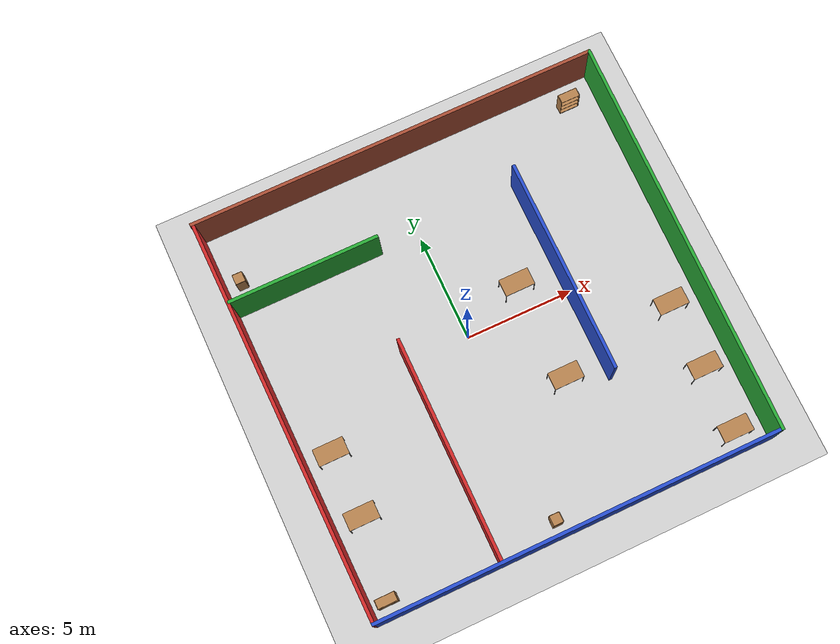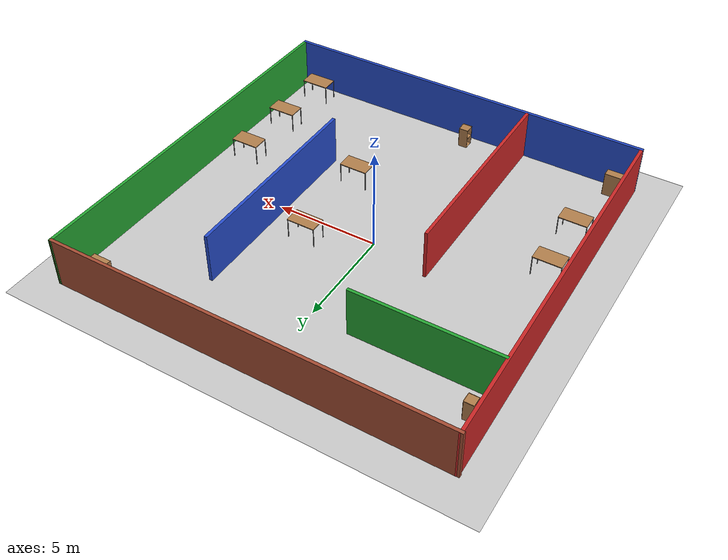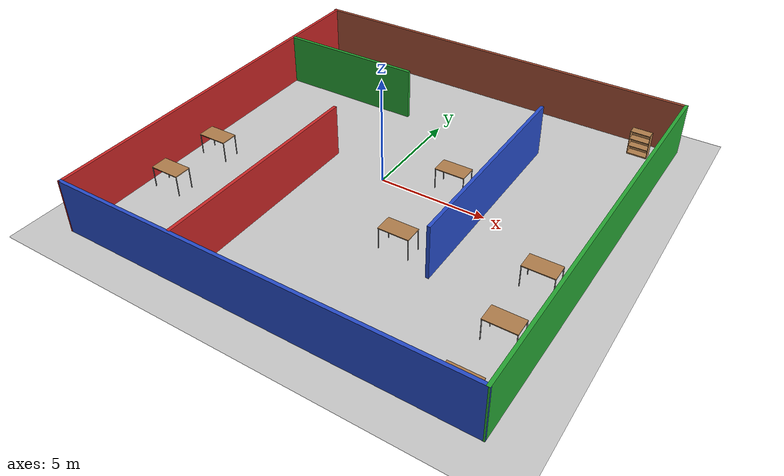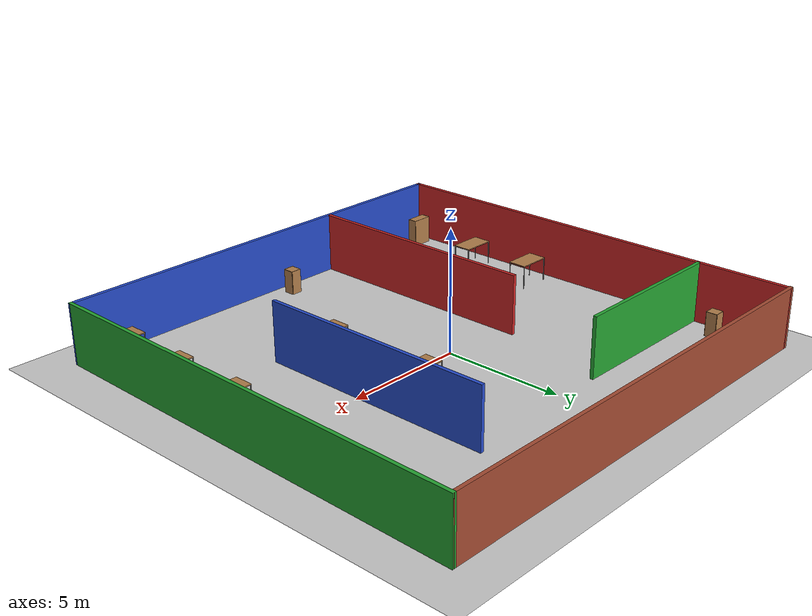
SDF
<sdf version="1.6">
 <world name="default">
  <light name="sun" type="directional">
   <pose>0 0 10 0 -0 0</pose>
   <diffuse>0.8 0.8 0.8 1</diffuse>
   <specular>0.1 0.1 0.1 1</specular>
   <attenuation>
    <range>1000</range>
    <constant>0.9</constant>
    <linear>0.01</linear>
    <quadratic>0.001</quadratic>
   </attenuation>
   <direction>-0.5 0.5 -1</direction>
  </light>
  <model name="ground_plane">
   <static>1</static>
   <link name="link">
    <collision name="collision">
     <geometry><plane><normal>0 0 1</normal><size>100 100</size></plane></geometry>
     <surface><friction><ode><mu>100</mu><mu2>50</mu2></ode></friction></surface>
    </collision>
    <visual name="visual">
     <cast_shadows>0</cast_shadows>
     <geometry><plane><normal>0 0 1</normal><size>100 100</size></plane></geometry>
     <material>
      <script><uri>file://media/materials/scripts/gazebo.material</uri><name>Gazebo/Grey</name></script>
     </material>
    </visual>
   </link>
  </model>
  <gravity>0 0 -9.8</gravity>
  <magnetic_field>6e-06 2.3e-05 -4.2e-05</magnetic_field>
  <atmosphere type="adiabatic"/>
  <physics name="default_physics" default="0" type="ode">
   <max_step_size>0.001</max_step_size>
   <real_time_factor>1</real_time_factor>
   <real_time_update_rate>1000</real_time_update_rate>
  </physics>
  <scene><ambient>0.4 0.4 0.4 1</ambient><background>0.7 0.7 0.7 1</background><shadows>1</shadows></scene>
  <spherical_coordinates>
   <surface_model>EARTH_WGS84</surface_model>
   <latitude_deg>0</latitude_deg>
   <longitude_deg>0</longitude_deg>
   <elevation>0</elevation>
   <heading_deg>0</heading_deg>
  </spherical_coordinates>
  <model name="simple_world2">
   <pose>0.654916 -0.263039 0 0 -0 0</pose>
   <link name="Wall_11">
    <collision name="Wall_11_Collision">
     <geometry><box><size>10.25 0.15 2.5</size></box></geometry>
     <pose>0 0 1.25 0 -0 0</pose>
    </collision>
    <visual name="Wall_11_Visual">
     <pose>0 0 1.25 0 -0 0</pose>
     <geometry><box><size>10.25 0.15 2.5</size></box></geometry>
     <material>
      <script><uri>file://media/materials/scripts/gazebo.material</uri><name>Gazebo/Red</name></script>
      <ambient>1 0.764706 0.305882 1</ambient>
     </material>
    </visual>
    <pose>-3.59077 -4.17597 0 0 -0 1.5708</pose>
   </link>
   <link name="Wall_2">
    <collision name="Wall_2_Collision">
     <geometry><box><size>18.75 0.15 2.5</size></box></geometry>
     <pose>0 0 1.25 0 -0 0</pose>
    </collision>
    <visual name="Wall_2_Visual">
     <pose>0 0 1.25 0 -0 0</pose>
     <geometry><box><size>18.75 0.15 2.5</size></box></geometry>
     <material>
      <script><uri>file://media/materials/scripts/gazebo.material</uri><name>Gazebo/Blue</name></script>
      <ambient>0.435294 0.796078 0.67451 1</ambient>
     </material>
    </visual>
    <pose>-0.013525 -9.34409 0 0 -0 0</pose>
   </link>
   <link name="Wall_3">
    <collision name="Wall_3_Collision">
     <geometry><box><size>18.8403 0.15 2.5</size></box></geometry>
     <pose>0 0 1.25 0 -0 0</pose>
    </collision>
    <visual name="Wall_3_Visual">
     <pose>0 0 1.25 0 -0 0</pose>
     <geometry><box><size>18.8403 0.15 2.5</size></box></geometry>
     <material>
      <script><uri>file://media/materials/scripts/gazebo.material</uri><name>Gazebo/Green</name></script>
      <ambient>0.760784 0.662745 0.627451 1</ambient>
     </material>
    </visual>
    <pose>9.42807 0 0 0 -0 1.55564</pose>
   </link>
   <link name="Wall_4">
    <collision name="Wall_4_Collision">
     <geometry><box><size>19.25 0.15 2.5</size></box></geometry>
     <pose>0 0 1.25 0 -0 0</pose>
    </collision>
    <visual name="Wall_4_Visual">
     <pose>0 0 1.25 0 -0 0</pose>
     <geometry><box><size>19.25 0.15 2.5</size></box></geometry>
     <material>
      <script><uri>file://media/materials/scripts/gazebo.material</uri><name>Gazebo/Bricks</name></script>
      <ambient>1 1 1 1</ambient>
     </material>
    </visual>
    <pose>-0.020792 9.34409 0 0 -0 3.14159</pose>
   </link>
   <link name="Wall_5">
    <collision name="Wall_5_Collision">
     <geometry><box><size>18.8394 0.15 2.5</size></box></geometry>
     <pose>0 0 1.25 0 -0 0</pose>
    </collision>
    <visual name="Wall_5_Visual">
     <pose>0 0 1.25 0 -0 0</pose>
     <geometry><box><size>18.8394 0.15 2.5</size></box></geometry>
     <material>
      <script><uri>file://media/materials/scripts/gazebo.material</uri><name>Gazebo/Red</name></script>
      <ambient>0.996078 0.47451 0.0196078 1</ambient>
     </material>
    </visual>
    <pose>-9.42193 0 0 0 0 -1.5592</pose>
   </link>
   <link name="Wall_7">
    <collision name="Wall_7_Collision">
     <geometry><box><size>10 0.15 2.5</size></box></geometry>
     <pose>0 0 1.25 0 -0 0</pose>
    </collision>
    <visual name="Wall_7_Visual">
     <pose>0 0 1.25 0 -0 0</pose>
     <geometry><box><size>10 0.15 2.5</size></box></geometry>
     <material>
      <script><uri>file://media/materials/scripts/gazebo.material</uri><name>Gazebo/Blue</name></script>
      <ambient>1 0.764706 0.305882 1</ambient>
     </material>
    </visual>
    <pose>4.1767 0.898502 0 0 0 -1.5708</pose>
   </link>
   <link name="Wall_9">
    <collision name="Wall_9_Collision">
     <geometry><box><size>7 0.15 2.5</size></box></geometry>
     <pose>0 0 1.25 0 -0 0</pose>
    </collision>
    <visual name="Wall_9_Visual">
     <pose>0 0 1.25 0 -0 0</pose>
     <geometry><box><size>7 0.15 2.5</size></box></geometry>
     <material>
      <script><uri>file://media/materials/scripts/gazebo.material</uri><name>Gazebo/Green</name></script>
      <ambient>0.435294 0.796078 0.67451 1</ambient>
     </material>
    </visual>
    <pose>-5.99137 5.4594 0 0 -0 0</pose>
   </link>
   <static>1</static>
  </model>
  <model name="bookshelf">
   <static>1</static>
   <link name="link">
    <inertial><mass>1</mass></inertial>
    <collision name="back">
     <pose>0 0.005 0.6 0 -0 0</pose>
     <geometry><box><size>0.9 0.01 1.2</size></box></geometry>
    </collision>
    <visual name="visual1">
     <pose>0 0.005 0.6 0 -0 0</pose>
     <geometry><box><size>0.9 0.01 1.2</size></box></geometry>
     <material>
      <script><uri>file://media/materials/scripts/gazebo.material</uri><name>Gazebo/Wood</name></script>
     </material>
    </visual>
    <collision name="left_side">
     <pose>0.45 -0.195 0.6 0 -0 0</pose>
     <geometry><box><size>0.02 0.4 1.2</size></box></geometry>
    </collision>
    <visual name="visual2">
     <pose>0.45 -0.195 0.6 0 -0 0</pose>
     <geometry><box><size>0.02 0.4 1.2</size></box></geometry>
     <material>
      <script><uri>file://media/materials/scripts/gazebo.material</uri><name>Gazebo/Wood</name></script>
     </material>
    </visual>
    <collision name="right_side">
     <pose>-0.45 -0.195 0.6 0 -0 0</pose>
     <geometry><box><size>0.02 0.4 1.2</size></box></geometry>
    </collision>
    <visual name="visual3">
     <pose>-0.45 -0.195 0.6 0 -0 0</pose>
     <geometry><box><size>0.02 0.4 1.2</size></box></geometry>
     <material>
      <script><uri>file://media/materials/scripts/gazebo.material</uri><name>Gazebo/Wood</name></script>
     </material>
    </visual>
    <collision name="bottom">
     <pose>0 -0.195 0.03 0 -0 0</pose>
     <geometry><box><size>0.88 0.4 0.06</size></box></geometry>
    </collision>
    <visual name="visual4">
     <pose>0 -0.195 0.03 0 -0 0</pose>
     <geometry><box><size>0.88 0.4 0.06</size></box></geometry>
     <material>
      <script><uri>file://media/materials/scripts/gazebo.material</uri><name>Gazebo/Wood</name></script>
     </material>
    </visual>
    <collision name="top">
     <pose>0 -0.195 1.19 0 -0 0</pose>
     <geometry><box><size>0.88 0.4 0.02</size></box></geometry>
    </collision>
    <visual name="visual5">
     <pose>0 -0.195 1.19 0 -0 0</pose>
     <geometry><box><size>0.88 0.4 0.02</size></box></geometry>
     <material>
      <script><uri>file://media/materials/scripts/gazebo.material</uri><name>Gazebo/Wood</name></script>
     </material>
    </visual>
    <collision name="low_shelf">
     <pose>0 -0.195 0.43 0 -0 0</pose>
     <geometry><box><size>0.88 0.4 0.02</size></box></geometry>
    </collision>
    <visual name="visual6">
     <pose>0 -0.195 0.43 0 -0 0</pose>
     <geometry><box><size>0.88 0.4 0.02</size></box></geometry>
     <material>
      <script><uri>file://media/materials/scripts/gazebo.material</uri><name>Gazebo/Wood</name></script>
     </material>
    </visual>
    <collision name="high_shelf">
     <pose>0 -0.195 0.8 0 -0 0</pose>
     <geometry><box><size>0.88 0.4 0.02</size></box></geometry>
    </collision>
    <visual name="visual7">
     <pose>0 -0.195 0.8 0 -0 0</pose>
     <geometry><box><size>0.88 0.4 0.02</size></box></geometry>
     <material>
      <script><uri>file://media/materials/scripts/gazebo.material</uri><name>Gazebo/Wood</name></script>
     </material>
    </visual>
   </link>
   <pose>-7.88139 -8.68727 0 0 -0 0</pose>
  </model>
  <model name="bookshelf_0">
   <static>1</static>
   <link name="link">
    <inertial><mass>1</mass></inertial>
    <collision name="back">
     <pose>0 0.005 0.6 0 -0 0</pose>
     <geometry><box><size>0.9 0.01 1.2</size></box></geometry>
    </collision>
    <visual name="visual1">
     <pose>0 0.005 0.6 0 -0 0</pose>
     <geometry><box><size>0.9 0.01 1.2</size></box></geometry>
     <material>
      <script><uri>file://media/materials/scripts/gazebo.material</uri><name>Gazebo/Wood</name></script>
     </material>
    </visual>
    <collision name="left_side">
     <pose>0.45 -0.195 0.6 0 -0 0</pose>
     <geometry><box><size>0.02 0.4 1.2</size></box></geometry>
    </collision>
    <visual name="visual2">
     <pose>0.45 -0.195 0.6 0 -0 0</pose>
     <geometry><box><size>0.02 0.4 1.2</size></box></geometry>
     <material>
      <script><uri>file://media/materials/scripts/gazebo.material</uri><name>Gazebo/Wood</name></script>
     </material>
    </visual>
    <collision name="right_side">
     <pose>-0.45 -0.195 0.6 0 -0 0</pose>
     <geometry><box><size>0.02 0.4 1.2</size></box></geometry>
    </collision>
    <visual name="visual3">
     <pose>-0.45 -0.195 0.6 0 -0 0</pose>
     <geometry><box><size>0.02 0.4 1.2</size></box></geometry>
     <material>
      <script><uri>file://media/materials/scripts/gazebo.material</uri><name>Gazebo/Wood</name></script>
     </material>
    </visual>
    <collision name="bottom">
     <pose>0 -0.195 0.03 0 -0 0</pose>
     <geometry><box><size>0.88 0.4 0.06</size></box></geometry>
    </collision>
    <visual name="visual4">
     <pose>0 -0.195 0.03 0 -0 0</pose>
     <geometry><box><size>0.88 0.4 0.06</size></box></geometry>
     <material>
      <script><uri>file://media/materials/scripts/gazebo.material</uri><name>Gazebo/Wood</name></script>
     </material>
    </visual>
    <collision name="top">
     <pose>0 -0.195 1.19 0 -0 0</pose>
     <geometry><box><size>0.88 0.4 0.02</size></box></geometry>
    </collision>
    <visual name="visual5">
     <pose>0 -0.195 1.19 0 -0 0</pose>
     <geometry><box><size>0.88 0.4 0.02</size></box></geometry>
     <material>
      <script><uri>file://media/materials/scripts/gazebo.material</uri><name>Gazebo/Wood</name></script>
     </material>
    </visual>
    <collision name="low_shelf">
     <pose>0 -0.195 0.43 0 -0 0</pose>
     <geometry><box><size>0.88 0.4 0.02</size></box></geometry>
    </collision>
    <visual name="visual6">
     <pose>0 -0.195 0.43 0 -0 0</pose>
     <geometry><box><size>0.88 0.4 0.02</size></box></geometry>
     <material>
      <script><uri>file://media/materials/scripts/gazebo.material</uri><name>Gazebo/Wood</name></script>
     </material>
    </visual>
    <collision name="high_shelf">
     <pose>0 -0.195 0.8 0 -0 0</pose>
     <geometry><box><size>0.88 0.4 0.02</size></box></geometry>
    </collision>
    <visual name="visual7">
     <pose>0 -0.195 0.8 0 -0 0</pose>
     <geometry><box><size>0.88 0.4 0.02</size></box></geometry>
     <material>
      <script><uri>file://media/materials/scripts/gazebo.material</uri><name>Gazebo/Wood</name></script>
     </material>
    </visual>
   </link>
   <pose>8.78874 8.22526 0 0 -0 0</pose>
  </model>
  <model name="cabinet">
   <static>1</static>
   <link name="cabinet_bottom_plate">
    <inertial>
     <pose>0 0 -1 0 -0 0</pose>
     <inertia><ixx>2.05</ixx><ixy>0</ixy><ixz>0</ixz><iyy>2.05</iyy><iyz>0</iyz><izz>2.05</izz></inertia>
     <mass>25</mass>
    </inertial>
    <collision name="cabinet_bottom_plate_geom">
     <pose>0 0 0.01 0 -0 0</pose>
     <geometry><box><size>0.45 0.45 0.02</size></box></geometry>
    </collision>
    <visual name="cabinet_bottom_plate_geom_visual">
     <pose>0 0 0.01 0 -0 0</pose>
     <geometry><box><size>0.45 0.45 0.02</size></box></geometry>
     <material>
      <script><uri>file://media/materials/scripts/gazebo.material</uri><name>Gazebo/Wood</name></script>
     </material>
    </visual>
    <collision name="cabinet_bottom_plate_geom_cabinet_back_plate">
     <pose>0.235 0 0.51 0 -0 0</pose>
     <geometry><box><size>0.02 0.45 1.02</size></box></geometry>
    </collision>
    <visual name="cabinet_bottom_plate_geom_cabinet_back_plate_visual">
     <pose>0.235 0 0.51 0 -0 0</pose>
     <geometry><box><size>0.02 0.45 1.02</size></box></geometry>
     <material>
      <script><uri>file://media/materials/scripts/gazebo.material</uri><name>Gazebo/Wood</name></script>
     </material>
    </visual>
    <collision name="cabinet_bottom_plate_geom_cabinet_left_plate">
     <pose>0 0.235 0.51 0 -0 0</pose>
     <geometry><box><size>0.45 0.02 1.02</size></box></geometry>
    </collision>
    <visual name="cabinet_bottom_plate_geom_cabinet_left_plate_visual">
     <pose>0 0.235 0.51 0 -0 0</pose>
     <geometry><box><size>0.45 0.02 1.02</size></box></geometry>
     <material>
      <script><uri>file://media/materials/scripts/gazebo.material</uri><name>Gazebo/Wood</name></script>
     </material>
    </visual>
    <collision name="cabinet_bottom_plate_geom_cabinet_middle_plate">
     <pose>0 0 0.51 0 -0 0</pose>
     <geometry><box><size>0.45 0.45 0.02</size></box></geometry>
    </collision>
    <visual name="cabinet_bottom_plate_geom_cabinet_middle_plate_visual">
     <pose>0 0 0.51 0 -0 0</pose>
     <geometry><box><size>0.45 0.45 0.02</size></box></geometry>
     <material>
      <script><uri>file://media/materials/scripts/gazebo.material</uri><name>Gazebo/Wood</name></script>
     </material>
    </visual>
    <collision name="cabinet_bottom_plate_geom_cabinet_right_plate">
     <pose>0 -0.235 0.51 0 -0 0</pose>
     <geometry><box><size>0.45 0.02 1.02</size></box></geometry>
    </collision>
    <visual name="cabinet_bottom_plate_geom_cabinet_right_plate_visual">
     <pose>0 -0.235 0.51 0 -0 0</pose>
     <geometry><box><size>0.45 0.02 1.02</size></box></geometry>
     <material>
      <script><uri>file://media/materials/scripts/gazebo.material</uri><name>Gazebo/Wood</name></script>
     </material>
    </visual>
    <collision name="cabinet_bottom_plate_geom_cabinet_top_plate">
     <pose>0 0 1.01 0 -0 0</pose>
     <geometry><box><size>0.45 0.45 0.02</size></box></geometry>
    </collision>
    <visual name="cabinet_bottom_plate_geom_cabinet_top_plate_visual">
     <pose>0 0 1.01 0 -0 0</pose>
     <geometry><box><size>0.45 0.45 0.02</size></box></geometry>
     <material>
      <script><uri>file://media/materials/scripts/gazebo.material</uri><name>Gazebo/Wood</name></script>
     </material>
    </visual>
   </link>
   <pose>-8.07727 6.50504 0 0 -0 0</pose>
  </model>
  <model name="cabinet_0">
   <static>1</static>
   <link name="cabinet_bottom_plate">
    <inertial>
     <pose>0 0 -1 0 -0 0</pose>
     <inertia><ixx>2.05</ixx><ixy>0</ixy><ixz>0</ixz><iyy>2.05</iyy><iyz>0</iyz><izz>2.05</izz></inertia>
     <mass>25</mass>
    </inertial>
    <collision name="cabinet_bottom_plate_geom">
     <pose>0 0 0.01 0 -0 0</pose>
     <geometry><box><size>0.45 0.45 0.02</size></box></geometry>
    </collision>
    <visual name="cabinet_bottom_plate_geom_visual">
     <pose>0 0 0.01 0 -0 0</pose>
     <geometry><box><size>0.45 0.45 0.02</size></box></geometry>
     <material>
      <script><uri>file://media/materials/scripts/gazebo.material</uri><name>Gazebo/Wood</name></script>
     </material>
    </visual>
    <collision name="cabinet_bottom_plate_geom_cabinet_back_plate">
     <pose>0.235 0 0.51 0 -0 0</pose>
     <geometry><box><size>0.02 0.45 1.02</size></box></geometry>
    </collision>
    <visual name="cabinet_bottom_plate_geom_cabinet_back_plate_visual">
     <pose>0.235 0 0.51 0 -0 0</pose>
     <geometry><box><size>0.02 0.45 1.02</size></box></geometry>
     <material>
      <script><uri>file://media/materials/scripts/gazebo.material</uri><name>Gazebo/Wood</name></script>
     </material>
    </visual>
    <collision name="cabinet_bottom_plate_geom_cabinet_left_plate">
     <pose>0 0.235 0.51 0 -0 0</pose>
     <geometry><box><size>0.45 0.02 1.02</size></box></geometry>
    </collision>
    <visual name="cabinet_bottom_plate_geom_cabinet_left_plate_visual">
     <pose>0 0.235 0.51 0 -0 0</pose>
     <geometry><box><size>0.45 0.02 1.02</size></box></geometry>
     <material>
      <script><uri>file://media/materials/scripts/gazebo.material</uri><name>Gazebo/Wood</name></script>
     </material>
    </visual>
    <collision name="cabinet_bottom_plate_geom_cabinet_middle_plate">
     <pose>0 0 0.51 0 -0 0</pose>
     <geometry><box><size>0.45 0.45 0.02</size></box></geometry>
    </collision>
    <visual name="cabinet_bottom_plate_geom_cabinet_middle_plate_visual">
     <pose>0 0 0.51 0 -0 0</pose>
     <geometry><box><size>0.45 0.45 0.02</size></box></geometry>
     <material>
      <script><uri>file://media/materials/scripts/gazebo.material</uri><name>Gazebo/Wood</name></script>
     </material>
    </visual>
    <collision name="cabinet_bottom_plate_geom_cabinet_right_plate">
     <pose>0 -0.235 0.51 0 -0 0</pose>
     <geometry><box><size>0.45 0.02 1.02</size></box></geometry>
    </collision>
    <visual name="cabinet_bottom_plate_geom_cabinet_right_plate_visual">
     <pose>0 -0.235 0.51 0 -0 0</pose>
     <geometry><box><size>0.45 0.02 1.02</size></box></geometry>
     <material>
      <script><uri>file://media/materials/scripts/gazebo.material</uri><name>Gazebo/Wood</name></script>
     </material>
    </visual>
    <collision name="cabinet_bottom_plate_geom_cabinet_top_plate">
     <pose>0 0 1.01 0 -0 0</pose>
     <geometry><box><size>0.45 0.45 0.02</size></box></geometry>
    </collision>
    <visual name="cabinet_bottom_plate_geom_cabinet_top_plate_visual">
     <pose>0 0 1.01 0 -0 0</pose>
     <geometry><box><size>0.45 0.45 0.02</size></box></geometry>
     <material>
      <script><uri>file://media/materials/scripts/gazebo.material</uri><name>Gazebo/Wood</name></script>
     </material>
    </visual>
   </link>
   <pose>-0.05821 -8.87194 0 0 -0 0</pose>
  </model>
  <model name="table">
   <static>0</static>
   <link name="link">
    <collision name="surface">
     <pose>0 0 1 0 -0 0</pose>
     <geometry><box><size>1.5 0.8 0.03</size></box></geometry>
     <surface><friction><ode><mu>0.6</mu><mu2>0.6</mu2></ode></friction></surface>
    </collision>
    <visual name="visual1">
     <pose>0 0 1 0 -0 0</pose>
     <geometry><box><size>1.4 0.8 0.04</size></box></geometry>
     <material>
      <script><uri>file://media/materials/scripts/gazebo.material</uri><name>Gazebo/Wood</name></script>
     </material>
    </visual>
    <collision name="front_left_leg">
     <pose>0.68 0.38 0.5 0 -0 0</pose>
     <geometry><cylinder><radius>0.02</radius><length>1</length></cylinder></geometry>
    </collision>
    <visual name="front_left_leg">
     <pose>0.68 0.38 0.5 0 -0 0</pose>
     <geometry><cylinder><radius>0.02</radius><length>1</length></cylinder></geometry>
     <material>
      <script><uri>file://media/materials/scripts/gazebo.material</uri><name>Gazebo/Grey</name></script>
     </material>
    </visual>
    <collision name="front_right_leg">
     <pose>0.68 -0.38 0.5 0 -0 0</pose>
     <geometry><cylinder><radius>0.02</radius><length>1</length></cylinder></geometry>
    </collision>
    <visual name="front_right_leg">
     <pose>0.68 -0.38 0.5 0 -0 0</pose>
     <geometry><cylinder><radius>0.02</radius><length>1</length></cylinder></geometry>
     <material>
      <script><uri>file://media/materials/scripts/gazebo.material</uri><name>Gazebo/Grey</name></script>
     </material>
    </visual>
    <collision name="back_right_leg">
     <pose>-0.68 -0.38 0.5 0 -0 0</pose>
     <geometry><cylinder><radius>0.02</radius><length>1</length></cylinder></geometry>
    </collision>
    <visual name="back_right_leg">
     <pose>-0.68 -0.38 0.5 0 -0 0</pose>
     <geometry><cylinder><radius>0.02</radius><length>1</length></cylinder></geometry>
     <material>
      <script><uri>file://media/materials/scripts/gazebo.material</uri><name>Gazebo/Grey</name></script>
     </material>
    </visual>
    <collision name="back_left_leg">
     <pose>-0.68 0.38 0.5 0 -0 0</pose>
     <geometry><cylinder><radius>0.02</radius><length>1</length></cylinder></geometry>
    </collision>
    <visual name="back_left_leg">
     <pose>-0.68 0.38 0.5 0 -0 0</pose>
     <geometry><cylinder><radius>0.02</radius><length>1</length></cylinder></geometry>
     <material>
      <script><uri>file://media/materials/scripts/gazebo.material</uri><name>Gazebo/Grey</name></script>
     </material>
    </visual>
    <inertial>
     <inertia><ixx>1</ixx><ixy>0</ixy><ixz>0</ixz><iyy>1</iyy><iyz>0</iyz><izz>1</izz></inertia>
     <mass>1</mass>
    </inertial>
   </link>
   <pose>-7.40088 -5.26092 -9e-06 1e-06 -1e-06 0</pose>
  </model>
  <model name="table_0">
   <static>0</static>
   <link name="link">
    <collision name="surface">
     <pose>0 0 1 0 -0 0</pose>
     <geometry><box><size>1.5 0.8 0.03</size></box></geometry>
     <surface><friction><ode><mu>0.6</mu><mu2>0.6</mu2></ode></friction></surface>
    </collision>
    <visual name="visual1">
     <pose>0 0 1 0 -0 0</pose>
     <geometry><box><size>1.4 0.8 0.04</size></box></geometry>
     <material>
      <script><uri>file://media/materials/scripts/gazebo.material</uri><name>Gazebo/Wood</name></script>
     </material>
    </visual>
    <collision name="front_left_leg">
     <pose>0.68 0.38 0.5 0 -0 0</pose>
     <geometry><cylinder><radius>0.02</radius><length>1</length></cylinder></geometry>
    </collision>
    <visual name="front_left_leg">
     <pose>0.68 0.38 0.5 0 -0 0</pose>
     <geometry><cylinder><radius>0.02</radius><length>1</length></cylinder></geometry>
     <material>
      <script><uri>file://media/materials/scripts/gazebo.material</uri><name>Gazebo/Grey</name></script>
     </material>
    </visual>
    <collision name="front_right_leg">
     <pose>0.68 -0.38 0.5 0 -0 0</pose>
     <geometry><cylinder><radius>0.02</radius><length>1</length></cylinder></geometry>
    </collision>
    <visual name="front_right_leg">
     <pose>0.68 -0.38 0.5 0 -0 0</pose>
     <geometry><cylinder><radius>0.02</radius><length>1</length></cylinder></geometry>
     <material>
      <script><uri>file://media/materials/scripts/gazebo.material</uri><name>Gazebo/Grey</name></script>
     </material>
    </visual>
    <collision name="back_right_leg">
     <pose>-0.68 -0.38 0.5 0 -0 0</pose>
     <geometry><cylinder><radius>0.02</radius><length>1</length></cylinder></geometry>
    </collision>
    <visual name="back_right_leg">
     <pose>-0.68 -0.38 0.5 0 -0 0</pose>
     <geometry><cylinder><radius>0.02</radius><length>1</length></cylinder></geometry>
     <material>
      <script><uri>file://media/materials/scripts/gazebo.material</uri><name>Gazebo/Grey</name></script>
     </material>
    </visual>
    <collision name="back_left_leg">
     <pose>-0.68 0.38 0.5 0 -0 0</pose>
     <geometry><cylinder><radius>0.02</radius><length>1</length></cylinder></geometry>
    </collision>
    <visual name="back_left_leg">
     <pose>-0.68 0.38 0.5 0 -0 0</pose>
     <geometry><cylinder><radius>0.02</radius><length>1</length></cylinder></geometry>
     <material>
      <script><uri>file://media/materials/scripts/gazebo.material</uri><name>Gazebo/Grey</name></script>
     </material>
    </visual>
    <inertial>
     <inertia><ixx>1</ixx><ixy>0</ixy><ixz>0</ixz><iyy>1</iyy><iyz>0</iyz><izz>1</izz></inertia>
     <mass>1</mass>
    </inertial>
   </link>
   <pose>-7.48002 -2.23796 -1e-06 -1e-06 1e-06 0</pose>
  </model>
  <model name="table_1">
   <static>0</static>
   <link name="link">
    <collision name="surface">
     <pose>0 0 1 0 -0 0</pose>
     <geometry><box><size>1.5 0.8 0.03</size></box></geometry>
     <surface><friction><ode><mu>0.6</mu><mu2>0.6</mu2></ode></friction></surface>
    </collision>
    <visual name="visual1">
     <pose>0 0 1 0 -0 0</pose>
     <geometry><box><size>1.4 0.8 0.04</size></box></geometry>
     <material>
      <script><uri>file://media/materials/scripts/gazebo.material</uri><name>Gazebo/Wood</name></script>
     </material>
    </visual>
    <collision name="front_left_leg">
     <pose>0.68 0.38 0.5 0 -0 0</pose>
     <geometry><cylinder><radius>0.02</radius><length>1</length></cylinder></geometry>
    </collision>
    <visual name="front_left_leg">
     <pose>0.68 0.38 0.5 0 -0 0</pose>
     <geometry><cylinder><radius>0.02</radius><length>1</length></cylinder></geometry>
     <material>
      <script><uri>file://media/materials/scripts/gazebo.material</uri><name>Gazebo/Grey</name></script>
     </material>
    </visual>
    <collision name="front_right_leg">
     <pose>0.68 -0.38 0.5 0 -0 0</pose>
     <geometry><cylinder><radius>0.02</radius><length>1</length></cylinder></geometry>
    </collision>
    <visual name="front_right_leg">
     <pose>0.68 -0.38 0.5 0 -0 0</pose>
     <geometry><cylinder><radius>0.02</radius><length>1</length></cylinder></geometry>
     <material>
      <script><uri>file://media/materials/scripts/gazebo.material</uri><name>Gazebo/Grey</name></script>
     </material>
    </visual>
    <collision name="back_right_leg">
     <pose>-0.68 -0.38 0.5 0 -0 0</pose>
     <geometry><cylinder><radius>0.02</radius><length>1</length></cylinder></geometry>
    </collision>
    <visual name="back_right_leg">
     <pose>-0.68 -0.38 0.5 0 -0 0</pose>
     <geometry><cylinder><radius>0.02</radius><length>1</length></cylinder></geometry>
     <material>
      <script><uri>file://media/materials/scripts/gazebo.material</uri><name>Gazebo/Grey</name></script>
     </material>
    </visual>
    <collision name="back_left_leg">
     <pose>-0.68 0.38 0.5 0 -0 0</pose>
     <geometry><cylinder><radius>0.02</radius><length>1</length></cylinder></geometry>
    </collision>
    <visual name="back_left_leg">
     <pose>-0.68 0.38 0.5 0 -0 0</pose>
     <geometry><cylinder><radius>0.02</radius><length>1</length></cylinder></geometry>
     <material>
      <script><uri>file://media/materials/scripts/gazebo.material</uri><name>Gazebo/Grey</name></script>
     </material>
    </visual>
    <inertial>
     <inertia><ixx>1</ixx><ixy>0</ixy><ixz>0</ixz><iyy>1</iyy><iyz>0</iyz><izz>1</izz></inertia>
     <mass>1</mass>
    </inertial>
   </link>
   <pose>8.54176 -8.65968 -9e-06 1e-06 -1e-06 0</pose>
  </model>
  <model name="table_2">
   <static>0</static>
   <link name="link">
    <collision name="surface">
     <pose>0 0 1 0 -0 0</pose>
     <geometry><box><size>1.5 0.8 0.03</size></box></geometry>
     <surface><friction><ode><mu>0.6</mu><mu2>0.6</mu2></ode></friction></surface>
    </collision>
    <visual name="visual1">
     <pose>0 0 1 0 -0 0</pose>
     <geometry><box><size>1.4 0.8 0.04</size></box></geometry>
     <material>
      <script><uri>file://media/materials/scripts/gazebo.material</uri><name>Gazebo/Wood</name></script>
     </material>
    </visual>
    <collision name="front_left_leg">
     <pose>0.68 0.38 0.5 0 -0 0</pose>
     <geometry><cylinder><radius>0.02</radius><length>1</length></cylinder></geometry>
    </collision>
    <visual name="front_left_leg">
     <pose>0.68 0.38 0.5 0 -0 0</pose>
     <geometry><cylinder><radius>0.02</radius><length>1</length></cylinder></geometry>
     <material>
      <script><uri>file://media/materials/scripts/gazebo.material</uri><name>Gazebo/Grey</name></script>
     </material>
    </visual>
    <collision name="front_right_leg">
     <pose>0.68 -0.38 0.5 0 -0 0</pose>
     <geometry><cylinder><radius>0.02</radius><length>1</length></cylinder></geometry>
    </collision>
    <visual name="front_right_leg">
     <pose>0.68 -0.38 0.5 0 -0 0</pose>
     <geometry><cylinder><radius>0.02</radius><length>1</length></cylinder></geometry>
     <material>
      <script><uri>file://media/materials/scripts/gazebo.material</uri><name>Gazebo/Grey</name></script>
     </material>
    </visual>
    <collision name="back_right_leg">
     <pose>-0.68 -0.38 0.5 0 -0 0</pose>
     <geometry><cylinder><radius>0.02</radius><length>1</length></cylinder></geometry>
    </collision>
    <visual name="back_right_leg">
     <pose>-0.68 -0.38 0.5 0 -0 0</pose>
     <geometry><cylinder><radius>0.02</radius><length>1</length></cylinder></geometry>
     <material>
      <script><uri>file://media/materials/scripts/gazebo.material</uri><name>Gazebo/Grey</name></script>
     </material>
    </visual>
    <collision name="back_left_leg">
     <pose>-0.68 0.38 0.5 0 -0 0</pose>
     <geometry><cylinder><radius>0.02</radius><length>1</length></cylinder></geometry>
    </collision>
    <visual name="back_left_leg">
     <pose>-0.68 0.38 0.5 0 -0 0</pose>
     <geometry><cylinder><radius>0.02</radius><length>1</length></cylinder></geometry>
     <material>
      <script><uri>file://media/materials/scripts/gazebo.material</uri><name>Gazebo/Grey</name></script>
     </material>
    </visual>
    <inertial>
     <inertia><ixx>1</ixx><ixy>0</ixy><ixz>0</ixz><iyy>1</iyy><iyz>0</iyz><izz>1</izz></inertia>
     <mass>1</mass>
    </inertial>
   </link>
   <pose>8.62976 -5.66404 -1e-06 -1e-06 1e-06 0</pose>
  </model>
  <model name="table_3">
   <static>0</static>
   <link name="link">
    <collision name="surface">
     <pose>0 0 1 0 -0 0</pose>
     <geometry><box><size>1.5 0.8 0.03</size></box></geometry>
     <surface><friction><ode><mu>0.6</mu><mu2>0.6</mu2></ode></friction></surface>
    </collision>
    <visual name="visual1">
     <pose>0 0 1 0 -0 0</pose>
     <geometry><box><size>1.4 0.8 0.04</size></box></geometry>
     <material>
      <script><uri>file://media/materials/scripts/gazebo.material</uri><name>Gazebo/Wood</name></script>
     </material>
    </visual>
    <collision name="front_left_leg">
     <pose>0.68 0.38 0.5 0 -0 0</pose>
     <geometry><cylinder><radius>0.02</radius><length>1</length></cylinder></geometry>
    </collision>
    <visual name="front_left_leg">
     <pose>0.68 0.38 0.5 0 -0 0</pose>
     <geometry><cylinder><radius>0.02</radius><length>1</length></cylinder></geometry>
     <material>
      <script><uri>file://media/materials/scripts/gazebo.material</uri><name>Gazebo/Grey</name></script>
     </material>
    </visual>
    <collision name="front_right_leg">
     <pose>0.68 -0.38 0.5 0 -0 0</pose>
     <geometry><cylinder><radius>0.02</radius><length>1</length></cylinder></geometry>
    </collision>
    <visual name="front_right_leg">
     <pose>0.68 -0.38 0.5 0 -0 0</pose>
     <geometry><cylinder><radius>0.02</radius><length>1</length></cylinder></geometry>
     <material>
      <script><uri>file://media/materials/scripts/gazebo.material</uri><name>Gazebo/Grey</name></script>
     </material>
    </visual>
    <collision name="back_right_leg">
     <pose>-0.68 -0.38 0.5 0 -0 0</pose>
     <geometry><cylinder><radius>0.02</radius><length>1</length></cylinder></geometry>
    </collision>
    <visual name="back_right_leg">
     <pose>-0.68 -0.38 0.5 0 -0 0</pose>
     <geometry><cylinder><radius>0.02</radius><length>1</length></cylinder></geometry>
     <material>
      <script><uri>file://media/materials/scripts/gazebo.material</uri><name>Gazebo/Grey</name></script>
     </material>
    </visual>
    <collision name="back_left_leg">
     <pose>-0.68 0.38 0.5 0 -0 0</pose>
     <geometry><cylinder><radius>0.02</radius><length>1</length></cylinder></geometry>
    </collision>
    <visual name="back_left_leg">
     <pose>-0.68 0.38 0.5 0 -0 0</pose>
     <geometry><cylinder><radius>0.02</radius><length>1</length></cylinder></geometry>
     <material>
      <script><uri>file://media/materials/scripts/gazebo.material</uri><name>Gazebo/Grey</name></script>
     </material>
    </visual>
    <inertial>
     <inertia><ixx>1</ixx><ixy>0</ixy><ixz>0</ixz><iyy>1</iyy><iyz>0</iyz><izz>1</izz></inertia>
     <mass>1</mass>
    </inertial>
   </link>
   <pose>8.62141 -2.4977 -9e-06 1e-06 -1e-06 0</pose>
  </model>
  <model name="table_4">
   <static>0</static>
   <link name="link">
    <collision name="surface">
     <pose>0 0 1 0 -0 0</pose>
     <geometry><box><size>1.5 0.8 0.03</size></box></geometry>
     <surface><friction><ode><mu>0.6</mu><mu2>0.6</mu2></ode></friction></surface>
    </collision>
    <visual name="visual1">
     <pose>0 0 1 0 -0 0</pose>
     <geometry><box><size>1.4 0.8 0.04</size></box></geometry>
     <material>
      <script><uri>file://media/materials/scripts/gazebo.material</uri><name>Gazebo/Wood</name></script>
     </material>
    </visual>
    <collision name="front_left_leg">
     <pose>0.68 0.38 0.5 0 -0 0</pose>
     <geometry><cylinder><radius>0.02</radius><length>1</length></cylinder></geometry>
    </collision>
    <visual name="front_left_leg">
     <pose>0.68 0.38 0.5 0 -0 0</pose>
     <geometry><cylinder><radius>0.02</radius><length>1</length></cylinder></geometry>
     <material>
      <script><uri>file://media/materials/scripts/gazebo.material</uri><name>Gazebo/Grey</name></script>
     </material>
    </visual>
    <collision name="front_right_leg">
     <pose>0.68 -0.38 0.5 0 -0 0</pose>
     <geometry><cylinder><radius>0.02</radius><length>1</length></cylinder></geometry>
    </collision>
    <visual name="front_right_leg">
     <pose>0.68 -0.38 0.5 0 -0 0</pose>
     <geometry><cylinder><radius>0.02</radius><length>1</length></cylinder></geometry>
     <material>
      <script><uri>file://media/materials/scripts/gazebo.material</uri><name>Gazebo/Grey</name></script>
     </material>
    </visual>
    <collision name="back_right_leg">
     <pose>-0.68 -0.38 0.5 0 -0 0</pose>
     <geometry><cylinder><radius>0.02</radius><length>1</length></cylinder></geometry>
    </collision>
    <visual name="back_right_leg">
     <pose>-0.68 -0.38 0.5 0 -0 0</pose>
     <geometry><cylinder><radius>0.02</radius><length>1</length></cylinder></geometry>
     <material>
      <script><uri>file://media/materials/scripts/gazebo.material</uri><name>Gazebo/Grey</name></script>
     </material>
    </visual>
    <collision name="back_left_leg">
     <pose>-0.68 0.38 0.5 0 -0 0</pose>
     <geometry><cylinder><radius>0.02</radius><length>1</length></cylinder></geometry>
    </collision>
    <visual name="back_left_leg">
     <pose>-0.68 0.38 0.5 0 -0 0</pose>
     <geometry><cylinder><radius>0.02</radius><length>1</length></cylinder></geometry>
     <material>
      <script><uri>file://media/materials/scripts/gazebo.material</uri><name>Gazebo/Grey</name></script>
     </material>
    </visual>
    <inertial>
     <inertia><ixx>1</ixx><ixy>0</ixy><ixz>0</ixz><iyy>1</iyy><iyz>0</iyz><izz>1</izz></inertia>
     <mass>1</mass>
    </inertial>
   </link>
   <pose>3.01438 -3.50617 -2e-06 0 -0 0</pose>
  </model>
  <model name="table_5">
   <static>0</static>
   <link name="link">
    <collision name="surface">
     <pose>0 0 1 0 -0 0</pose>
     <geometry><box><size>1.5 0.8 0.03</size></box></geometry>
     <surface><friction><ode><mu>0.6</mu><mu2>0.6</mu2></ode></friction></surface>
    </collision>
    <visual name="visual1">
     <pose>0 0 1 0 -0 0</pose>
     <geometry><box><size>1.4 0.8 0.04</size></box></geometry>
     <material>
      <script><uri>file://media/materials/scripts/gazebo.material</uri><name>Gazebo/Wood</name></script>
     </material>
    </visual>
    <collision name="front_left_leg">
     <pose>0.68 0.38 0.5 0 -0 0</pose>
     <geometry><cylinder><radius>0.02</radius><length>1</length></cylinder></geometry>
    </collision>
    <visual name="front_left_leg">
     <pose>0.68 0.38 0.5 0 -0 0</pose>
     <geometry><cylinder><radius>0.02</radius><length>1</length></cylinder></geometry>
     <material>
      <script><uri>file://media/materials/scripts/gazebo.material</uri><name>Gazebo/Grey</name></script>
     </material>
    </visual>
    <collision name="front_right_leg">
     <pose>0.68 -0.38 0.5 0 -0 0</pose>
     <geometry><cylinder><radius>0.02</radius><length>1</length></cylinder></geometry>
    </collision>
    <visual name="front_right_leg">
     <pose>0.68 -0.38 0.5 0 -0 0</pose>
     <geometry><cylinder><radius>0.02</radius><length>1</length></cylinder></geometry>
     <material>
      <script><uri>file://media/materials/scripts/gazebo.material</uri><name>Gazebo/Grey</name></script>
     </material>
    </visual>
    <collision name="back_right_leg">
     <pose>-0.68 -0.38 0.5 0 -0 0</pose>
     <geometry><cylinder><radius>0.02</radius><length>1</length></cylinder></geometry>
    </collision>
    <visual name="back_right_leg">
     <pose>-0.68 -0.38 0.5 0 -0 0</pose>
     <geometry><cylinder><radius>0.02</radius><length>1</length></cylinder></geometry>
     <material>
      <script><uri>file://media/materials/scripts/gazebo.material</uri><name>Gazebo/Grey</name></script>
     </material>
    </visual>
    <collision name="back_left_leg">
     <pose>-0.68 0.38 0.5 0 -0 0</pose>
     <geometry><cylinder><radius>0.02</radius><length>1</length></cylinder></geometry>
    </collision>
    <visual name="back_left_leg">
     <pose>-0.68 0.38 0.5 0 -0 0</pose>
     <geometry><cylinder><radius>0.02</radius><length>1</length></cylinder></geometry>
     <material>
      <script><uri>file://media/materials/scripts/gazebo.material</uri><name>Gazebo/Grey</name></script>
     </material>
    </visual>
    <inertial>
     <inertia><ixx>1</ixx><ixy>0</ixy><ixz>0</ixz><iyy>1</iyy><iyz>0</iyz><izz>1</izz></inertia>
     <mass>1</mass>
    </inertial>
   </link>
   <pose>2.89093 1.15325 -8e-06 0 -0 0</pose>
  </model>
 </world>
</sdf>
